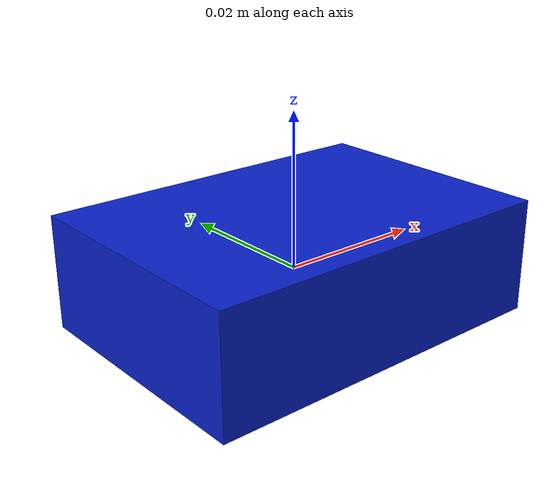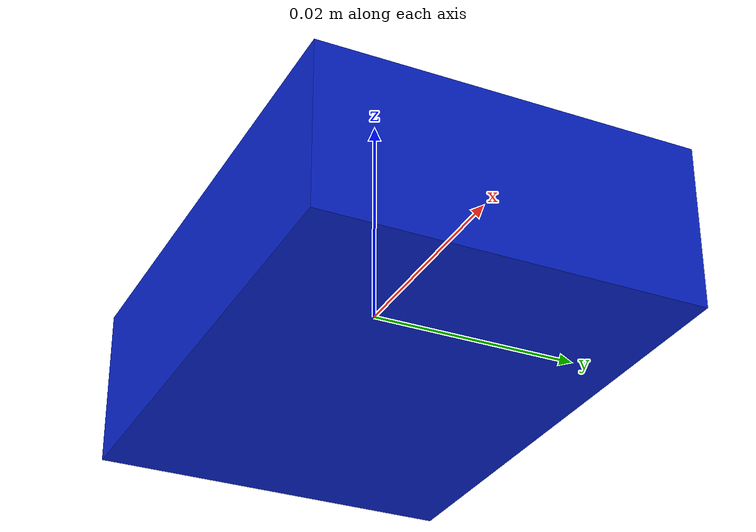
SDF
<?xml version="1.0" ?>
<sdf version="1.5">
  <model name="rectangle_bleu">
    <static>false</static>
    <link name="link">
      <pose>0 0 0 0 0 0</pose>
      <collision name="collision">
        <geometry>
          <mesh>
            <uri>model://rectangle_bleu/meshes/rectangle_bleu.dae</uri>
          </mesh>
        </geometry>
      </collision>
      <visual name="visual">
        <geometry>
          <mesh>
            <uri>model://rectangle_bleu/meshes/rectangle_bleu.dae</uri>
          </mesh>
        </geometry>
        <material>

        </material>
      </visual>
      <inertial>
        <mass>0.017</mass>
        <inertia> <!-- inertias are tricky to compute -->
          <!-- http://gazebosim.org/tutorials?tut=inertia&cat=build_robot -->
          <ixx>2.2e-6</ixx>       <!-- for a box: ixx = 0.083 * mass * (y*y + z*z) -->
          <ixy>0.0</ixy>         <!-- for a box: ixy = 0 -->
          <ixz>0.0</ixz>         <!-- for a box: ixz = 0 -->
          <iyy>4.1e-6</iyy>       <!-- for a box: iyy = 0.083 * mass * (x*x + z*z) -->
          <iyz>0.0</iyz>         <!-- for a box: iyz = 0 -->
          <izz>5.6e-6</izz>       <!-- for a box: izz = 0.083 * mass * (x*x + y*y) -->
        </inertia>
      </inertial>
    </link>
  </model>
</sdf>
